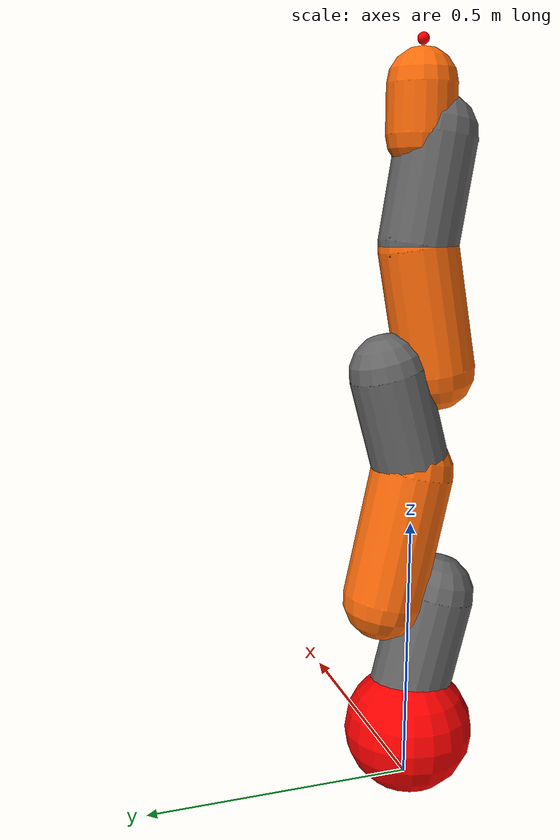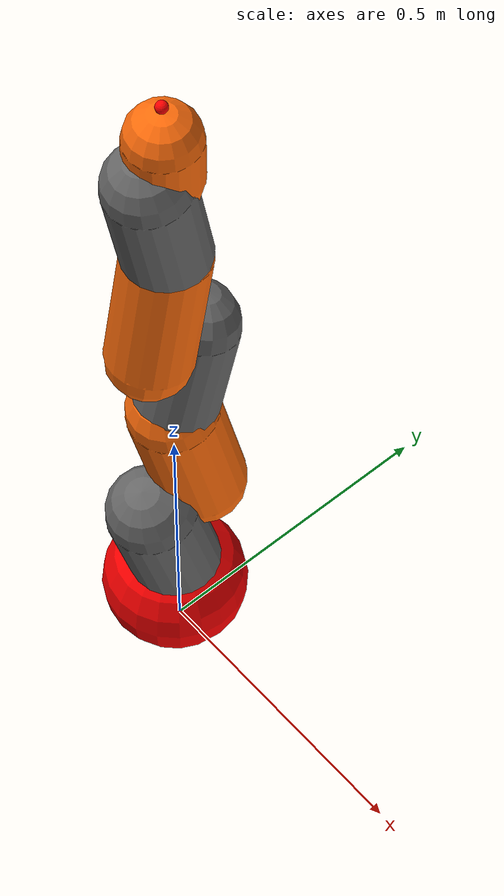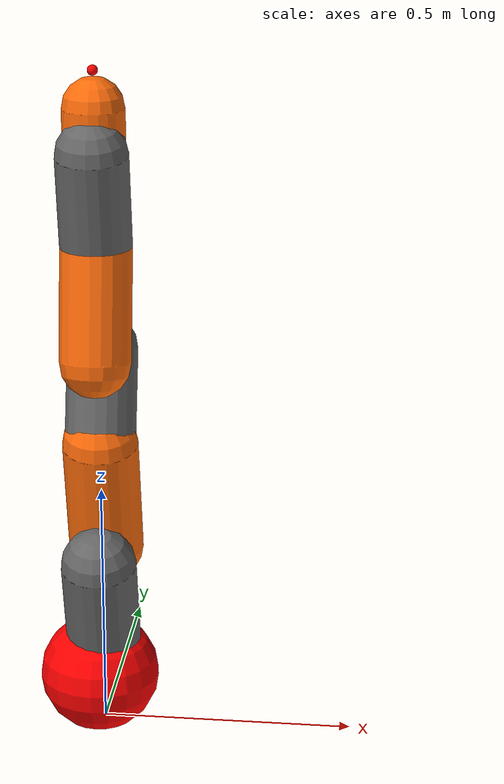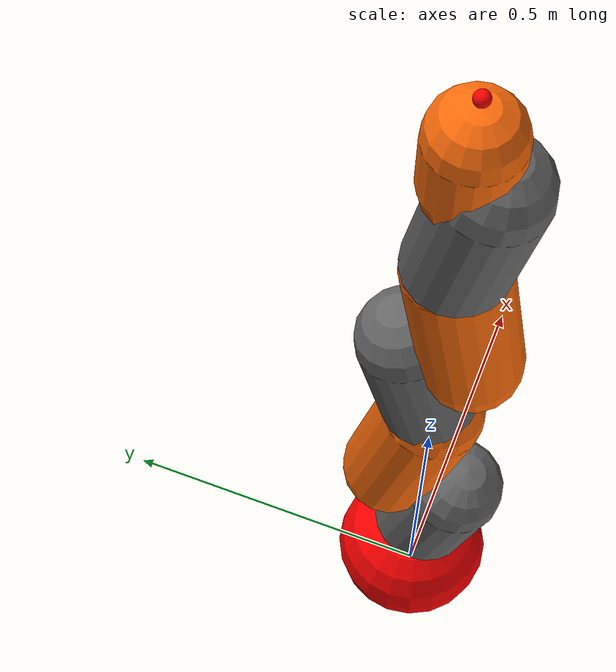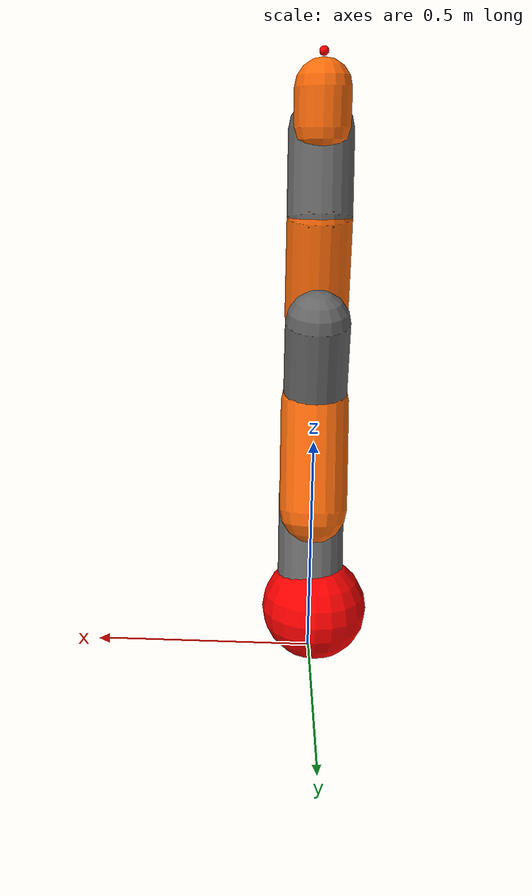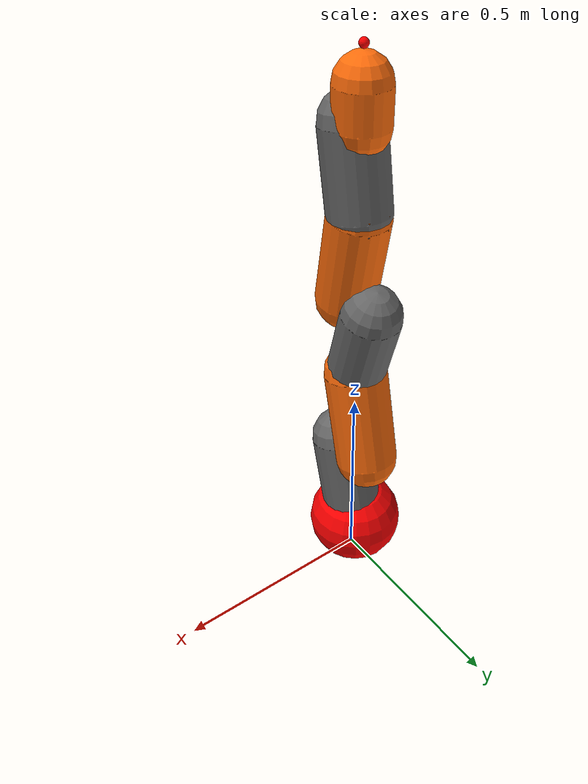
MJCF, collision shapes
<mujoco model="iiwa">

    <compiler angle="radian" meshdir="environment_parts/" autolimits="true"/>

    <!-- Physical limits of the actuator. -->
    <!-- Values taken from kuka_lbr_iiwa_brochure_en.pdf (see website) -->
    <actuator>
        <motor ctrllimited="true" ctrlrange="-176.0 176.0" joint="joint_1" name="torq_j1"/>
        <motor ctrllimited="true" ctrlrange="-176.0 176.0" joint="joint_2" name="torq_j2"/>
        <motor ctrllimited="true" ctrlrange="-110.0 110.0" joint="joint_3" name="torq_j3"/>
        <motor ctrllimited="true" ctrlrange="-110.0 110.0" joint="joint_4" name="torq_j4"/>
        <motor ctrllimited="true" ctrlrange="-110.0 110.0" joint="joint_5" name="torq_j5"/>
        <motor ctrllimited="true" ctrlrange="-40.0 40.0" joint="joint_6" name="torq_j6"/>
        <motor ctrllimited="true" ctrlrange="-40.0 40.0" joint="joint_7" name="torq_j7"/>
    </actuator>
    <asset>
        <mesh name="link_0" file="iiwa_arc/assets/meshes/base_link.stl" />
        <mesh name="link_1" file="iiwa_arc/assets/meshes/link_1.stl" />
        <mesh name="link_2" file="iiwa_arc/assets/meshes/link_2.stl" />
        <mesh name="link_3" file="iiwa_arc/assets/meshes/link_3.stl" />
        <mesh name="link_4" file="iiwa_arc/assets/meshes/link_4.stl" />
        <mesh name="link_5" file="iiwa_arc/assets/meshes/link_5.stl" />
        <mesh name="link_6" file="iiwa_arc/assets/meshes/link_6.stl" />
        <mesh name="link_7" file="iiwa_arc/assets/meshes/link_7.stl" />

         <!--texture type="skybox" builtin="gradient" rgb1="0.3 0.5 0.7" rgb2="0 0 0" width="512" height="512"/-->

    </asset>
    <worldbody>

        <body name="base" pos="0 0 0">
            <camera mode="fixed" name="robotview" pos="1.0 0 0.4" quat="0.653 0.271 0.271 0.653"/>
            <inertial diaginertia="0 0 0" mass="0" pos="0 0 0"/>
            <geom type="mesh" contype="0" conaffinity="0" group="1" density="0" mesh="link_0" rgba="0.4 0.4 0.4 1"/>
            <geom name="col_sockel" pos="-0.01 0 0.10" group="3" type="sphere" size="0.12" contype="0" conaffinity="0" density="0" rgba="1 0 0 1"/>

            <body name="iiwa_link_1" pos="0 0 0.1575">
                <inertial pos="0 -0.01439 0.102503" quat="1 0 0 0" mass="6.495" diaginertia="0.0690761441316632 0.0711085586914514 0.0200625854402119"/>
                <joint name="joint_1" pos="0 0 0" axis="0 0 1" limited="true" range="-2.9670597283903604 2.9670597283903604" />
                <geom pos="0 0 -0.005" type="mesh" contype="0" conaffinity="0" group="1" density="0" mesh="link_1" rgba="0.4 0.4 0.4 1"/>
                <!-- Red collision sphere for link_1 -->
                <geom  name="col_joint1" quat="0 0 0 1" type="capsule" group="3" fromto="0 0 0 0 -0.05 0.2025" size="0.075" contype="1" conaffinity="1" density="0" rgba="0.4 0.4 0.4 1"/>

                <body name="iiwa_link_2" pos="0 0 0.2025" quat="0 0 0.707107 0.707107">
                    <inertial pos="1.2e-05 0.06472 0.004804" quat="1 0 0 0" mass="8.807" diaginertia="0.0824701683534692 0.0164110968055191 0.0873510892661361"/>
                    <joint name="joint_2" pos="0 0 0" axis="0 0 1" limited="true" range="-2.0943951023931953 2.0943951023931953"/>
                    <geom pos="0 0 -0.013" quat="0 0 0 1" type="mesh" contype="0" conaffinity="0" group="1" density="0" mesh="link_2" rgba="1 0.423529 0.0392157 1"/>
                    <!-- Red collision capsule for link_2 -->
                    <geom  name="col_joint2" quat="0 0 0 1" type="capsule" group="3" fromto="0.0 0 0.0513 0 0.2375 0" size="0.075" contype="1" conaffinity="1" density="0" rgba="1 0.423529 0.0392157 1"/>

                    <body name="iiwa_link_3" pos="0 0.2375 0" quat="0 0 0.707107 0.707107">
                        <inertial pos="-0.000208 0.01601 0.087283" quat="1 0 0 0" mass="2.8" diaginertia="0.0230152941318817 0.0228661554143474 0.0454482283748983"/>
                        <joint name="joint_3" pos="0 0 0" axis="0 0 1" limited="true" range="-2.9670597283903604 2.9670597283903604"/>
                        <geom pos="0 0 -0.005" type="mesh" contype="0" conaffinity="0" group="1" density="0" mesh="link_3" rgba="0.4 0.4 0.4 1"/>
                        <!-- Red collision sphere for link_3 -->
                        <geom name="col_joint3" quat="0 0 0 1" type="capsule" group="3" fromto="0 0 0 0. 0.05 0.1825" size="0.07" contype="1" conaffinity="1" density="0" rgba="0.4 0.4 0.4 1"/>

                        <body name="iiwa_link_4" pos="0 0 0.1825" quat="0.707107 0.707107 0 0">
                            <inertial pos="-0.000203 0.098639 0.011478" quat="1 0 0 0" mass="5.283" diaginertia="0.0472789668341968 0.00964726804146909 0.0466529007761679"/>
                            <joint name="joint_4" pos="0 0 0" axis="0 0 1" limited="true" range="-2.0943951023931953 2.0943951023931953"/>
                            <geom pos="0 0 -0.011" type="mesh" contype="0" conaffinity="0" group="1" density="0" mesh="link_4" rgba="1 0.423529 0.0392157 1"/>
                            <!-- Red collision capsule for link_4 -->
                            <geom  name="col_joint4" quat="0 0 0 1" type="capsule" group="3" fromto="0 0 0.04 0. 0.2175 0" size="0.07" contype="1" conaffinity="1" density="0" rgba="1 0.423529 0.0392157 1"/>

                            <body name="iiwa_link_5" pos="0 0.2175 0" quat="0 0 0.707107 0.707107">
                                <inertial pos="5.7e-05 0.014468 0.062938" mass="1.889" diaginertia="0.0138359953358589 0.0116859337751969 0.00571863785412578"/>
                                <joint name="joint_5" pos="0 0 0" axis="0 0 1" limited="true" range="-2.9670597283903604 2.9670597283903604"/>
                                <geom pos="0 0 -0.005" quat="0 0 0 1" type="mesh" contype="0" conaffinity="0" group="1" density="0" mesh="link_5" rgba="0.4 0.4 0.4 1"/>
                                <!-- Red collision sphere for link_5 -->
                                 <geom  name="col_joint5" quat="0 0 0 1" type="capsule" group="3" fromto="0 0 0 0 0.03 0.1825" size="0.07" contype="1" conaffinity="1" density="0" rgba="0.4 0.4 0.4 1"/>

                                <body name="iiwa_link_6" pos="0 0 0.1825" quat="0.707107 0.707107 0 0">
                                    <inertial pos="0.000363 0.016982 -0.019731" quat="1 0 0 0" mass="2.32" diaginertia="0.00732758787216765 0.00477633755783711 0.00606797638550296"/>
                                    <joint name="joint_6" pos="0 0 0" axis="0 0 1" limited="true" range="-2.0943951023931953 2.0943951023931953"/>
                                    <geom pos="0 0 -0.061" quat="0 0 0 1" type="mesh" contype="0" conaffinity="0" group="1" density="0" mesh="link_6" rgba="1 0.423529 0.0392157 1"/>
                                    <!-- Red collision capsule for link_6 -->
                                    <geom name="col_joint67" quat="0 0 0 1" type="capsule" group="3" fromto="0 0 0 0 0.081 0." size="0.06" contype="1" conaffinity="1" density="0" rgba="1 0.423529 0.0392157 1"/>

                                    <body name="iiwa_link_7" pos="0 0.081 0" quat="0 0 0.707107 0.707107">
                                        <inertial pos="0.001904 -9.3e-05 0.018862" quat="1 0 0 0" mass="0.863" diaginertia="0.000884 0.000888 0.001105"/>
                                        <joint name="joint_7" pos="0 0 0" axis="0 0 1" limited="true" range="-3.0543261909900767 3.0543261909900767"/>
                                        <geom type="mesh" contype="0" conaffinity="0" group="1" density="0" mesh="link_7" rgba="0.4 0.4 0.4 1"/>
                                        <!-- Red collision sphere for link_7 -->

                                        <site name="gripper_attachment" pos="0 0 0.071" size="0.01" rgba="1 0 0 1" group="0"/>
                                    </body>
                                </body>
                            </body>
                        </body>
                    </body>
                </body>
            </body>
        </body>
    </worldbody>
</mujoco>
